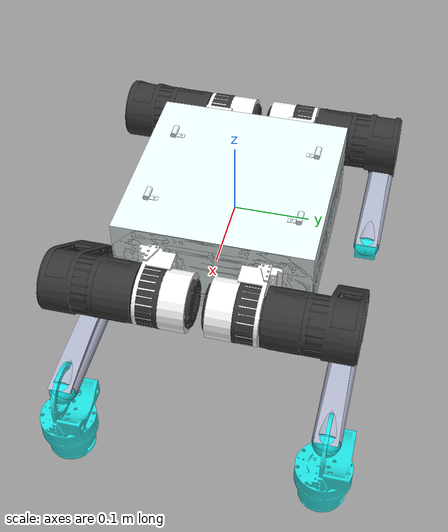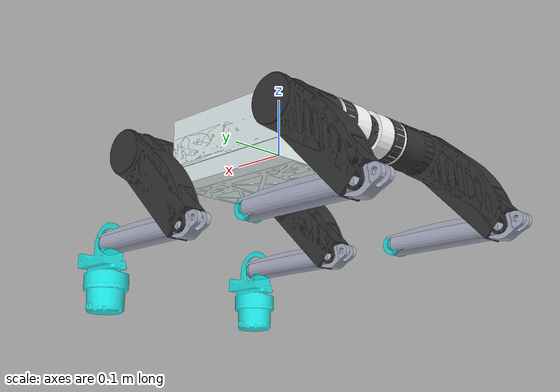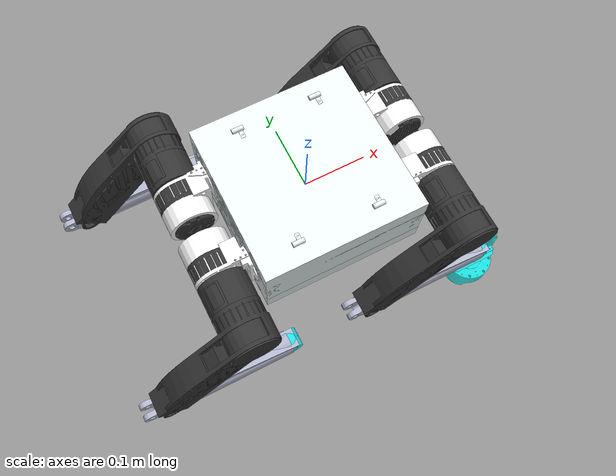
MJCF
<mujoco model="robot">
  <compiler angle="radian" meshdir="../meshes/"/>
  <asset>
    <mesh name="base_link" file="base_link.STL"/>
    <mesh name="leg1_link1" file="leg1_link1.STL"/>
    <mesh name="leg1_link2" file="leg1_link2.STL"/>
    <mesh name="leg1_link3" file="leg1_link3.STL"/>
    <mesh name="leg1_link4" file="leg1_link4.STL"/>
    <mesh name="leg2_link1" file="leg2_link1.STL"/>
    <mesh name="leg2_link2" file="leg2_link2.STL"/>
    <mesh name="leg2_link3" file="leg2_link3.STL"/>
    <mesh name="leg2_link4" file="leg2_link4.STL"/>
    <mesh name="leg3_link1" file="leg3_link1.STL"/>
    <mesh name="leg3_link2" file="leg3_link2.STL"/>
    <mesh name="leg3_link3" file="leg3_link3.STL"/>
    <mesh name="leg3_link4" file="leg3_link4.STL"/>
    <mesh name="leg4_link1" file="leg4_link1.STL"/>
    <mesh name="leg4_link2" file="leg4_link2.STL"/>
    <mesh name="leg4_link3" file="leg4_link3.STL"/>
    <mesh name="leg4_link4" file="leg4_link4.STL"/>
  </asset>
  <worldbody>
    <geom type="mesh" contype="0" conaffinity="0" group="1" density="0" rgba="0.9 0.95 0.95 1" mesh="base_link"/>
    <geom size="0.128 0.128 0.059" type="box" rgba="0.9 0.95 0.95 1"/>
    <geom size="0.0075 0.0075 0.002" type="box" contype="0" conaffinity="0" group="1" density="0"/>
    <body name="leg1_link1" pos="0.177 -0.0755 0">
      <inertial pos="-0.00461 0.02471 0.00019" quat="0.28679 0.646337 -0.28679 0.646337" mass="0.68678" diaginertia="0.00057 0.000555249 0.000454751"/>
      <joint name="leg1_joint1" pos="0 0 0" axis="1 0 0" range="-3.14 3.14" damping="0.01" frictionloss="0.2"/>
      <geom type="mesh" contype="0" conaffinity="0" group="1" density="0" rgba="1 1 1 1" mesh="leg1_link1"/>
      <geom size="0.038 0.03" pos="0 0.033 0" quat="0.707388 0.706825 0 0" type="cylinder" rgba="1 1 1 1"/>
      <body name="leg1_link2" pos="0 -0.0993 0" quat="0.923956 0 0.382499 0">
        <inertial pos="-0.00238 0.02441 -0.04244" quat="0.981879 0.109326 -0.0415327 0.149121" mass="1.22859" diaginertia="0.00760341 0.00707203 0.00135456"/>
        <joint name="leg1_joint2" pos="0 0 0" axis="0 1 0" range="-3.14 3.14" damping="0.01" frictionloss="0.2"/>
        <geom type="mesh" contype="0" conaffinity="0" group="1" density="0" rgba="0.2 0.2 0.2 1" mesh="leg1_link2"/>
        <geom size="0.038 0.0585" pos="0 0.036 0" quat="0.707388 0.706825 0 0" type="cylinder" rgba="0.2 0.2 0.2 1"/>
        <geom size="0.0825 0.02 0.03" pos="0 0 -0.125" quat="0.707388 0 0.706825 0" type="box" rgba="0.2 0.2 0.2 1"/>
        <body name="leg1_link3" pos="0 0 -0.21" quat="0.383235 0 -0.923651 0">
          <inertial pos="0.00353064 0 -0.103181" quat="0.999797 0 0.0201409 0" mass="0.21703" diaginertia="0.0011769 0.00117616 3.92612e-05"/>
          <joint name="leg1_joint3" pos="0 0 0" axis="0 1 0" range="-3.14 3.14" damping="0.01" frictionloss="0.2"/>
          <geom type="mesh" contype="0" conaffinity="0" group="1" density="0" rgba="0.671705 0.692426 0.77427 1" mesh="leg1_link3"/>
          <geom size="0.019 0.105" pos="0 0 -0.105" type="cylinder" rgba="0.671705 0.692426 0.77427 1"/>
          <geom pos="0 0 -0.21" type="mesh" contype="0" conaffinity="0" group="1" density="0" rgba="0 1 1 0.75" mesh="leg1_link4"/>
          <geom size="0.018" pos="0 0 -0.21" rgba="0 1 1 0.75"/>
        </body>
      </body>
    </body>
    <body name="leg2_link1" pos="0.177 0.0755 0">
      <inertial pos="-0.00461 -0.02471 0.00019" quat="0.646337 0.28679 -0.646337 0.28679" mass="0.68678" diaginertia="0.00057 0.000555249 0.000454751"/>
      <joint name="leg2_joint1" pos="0 0 0" axis="1 0 0" range="-3.14 3.14" damping="0.01" frictionloss="0.2"/>
      <geom type="mesh" contype="0" conaffinity="0" group="1" density="0" rgba="1 1 1 1" mesh="leg2_link1"/>
      <geom size="0.038 0.03" pos="0 -0.033 0" quat="0.707388 0.706825 0 0" type="cylinder" rgba="1 1 1 1"/>
      <body name="leg2_link2" pos="0 0.0993 0" quat="0.923956 0 0.382499 0">
        <inertial pos="-0.00238 -0.02441 -0.04244" quat="0.981879 -0.109326 -0.0415327 -0.149121" mass="1.22859" diaginertia="0.00760341 0.00707203 0.00135456"/>
        <joint name="leg2_joint2" pos="0 0 0" axis="0 1 0" range="-3.14 3.14" damping="0.01" frictionloss="0.2"/>
        <geom type="mesh" contype="0" conaffinity="0" group="1" density="0" rgba="0.2 0.2 0.2 1" mesh="leg2_link2"/>
        <geom size="0.038 0.0585" pos="0 -0.036 0" quat="0.707388 0.706825 0 0" type="cylinder" rgba="0.2 0.2 0.2 1"/>
        <geom size="0.0825 0.02 0.03" pos="0 0 -0.125" quat="0.707388 0 0.706825 0" type="box" rgba="0.2 0.2 0.2 1"/>
        <body name="leg2_link3" pos="0 0 -0.21" quat="0.383235 0 -0.923651 0">
          <inertial pos="0.00353064 0 -0.103181" quat="0.999797 0 0.0201409 0" mass="0.21703" diaginertia="0.0011769 0.00117616 3.92612e-05"/>
          <joint name="leg2_joint3" pos="0 0 0" axis="0 1 0" range="-3.14 3.14" damping="0.01" frictionloss="0.2"/>
          <geom type="mesh" contype="0" conaffinity="0" group="1" density="0" rgba="0.671705 0.692426 0.77427 1" mesh="leg2_link3"/>
          <geom size="0.019 0.105" pos="0 0 -0.105" type="cylinder" rgba="0.671705 0.692426 0.77427 1"/>
          <geom pos="0 0 -0.21" type="mesh" contype="0" conaffinity="0" group="1" density="0" rgba="0 1 1 0.75" mesh="leg2_link4"/>
          <geom size="0.018" pos="0 0 -0.21" rgba="0 1 1 0.75"/>
        </body>
      </body>
    </body>
    <body name="leg3_link1" pos="-0.177 -0.0755 0">
      <inertial pos="0.00461 0.02471 0.00019" quat="0.646337 0.28679 -0.646337 0.28679" mass="0.68678" diaginertia="0.00057 0.000555249 0.000454751"/>
      <joint name="leg3_joint1" pos="0 0 0" axis="1 0 0" range="-3.14 3.14" damping="0.01" frictionloss="0.2"/>
      <geom type="mesh" contype="0" conaffinity="0" group="1" density="0" rgba="1 1 1 1" mesh="leg3_link1"/>
      <geom size="0.038 0.03" pos="0 0.033 0" quat="0.707388 0.706825 0 0" type="cylinder" rgba="1 1 1 1"/>
      <body name="leg3_link2" pos="0 -0.0993 0" quat="0.923956 0 0.382499 0">
        <inertial pos="0.00238 0.02441 -0.04244" quat="0.981879 0.109326 0.0415327 -0.149121" mass="1.22859" diaginertia="0.00760341 0.00707203 0.00135456"/>
        <joint name="leg3_joint2" pos="0 0 0" axis="0 1 0" range="-3.14 3.14" damping="0.01" frictionloss="0.2"/>
        <geom type="mesh" contype="0" conaffinity="0" group="1" density="0" rgba="0.2 0.2 0.2 1" mesh="leg3_link2"/>
        <geom size="0.038 0.0585" pos="0 0.036 0" quat="0.707388 0.706825 0 0" type="cylinder" rgba="0.2 0.2 0.2 1"/>
        <geom size="0.0825 0.02 0.03" pos="0 0 -0.125" quat="0.707388 0 0.706825 0" type="box" rgba="0.2 0.2 0.2 1"/>
        <body name="leg3_link3" pos="0 0 -0.21" quat="0.383235 0 -0.923651 0">
          <inertial pos="-0.00353064 0 -0.103181" quat="0.999797 0 -0.0201409 0" mass="0.21703" diaginertia="0.0011769 0.00117616 3.92612e-05"/>
          <joint name="leg3_joint3" pos="0 0 0" axis="0 1 0" range="-3.14 3.14" damping="0.01" frictionloss="0.2"/>
          <geom type="mesh" contype="0" conaffinity="0" group="1" density="0" rgba="0.671705 0.692426 0.77427 1" mesh="leg3_link3"/>
          <geom size="0.019 0.105" pos="0 0 -0.105" type="cylinder" rgba="0.671705 0.692426 0.77427 1"/>
          <geom pos="0 0 -0.21" type="mesh" contype="0" conaffinity="0" group="1" density="0" rgba="0 1 1 0.75" mesh="leg3_link4"/>
          <geom size="0.018" pos="0 0 -0.21" rgba="0 1 1 0.75"/>
        </body>
      </body>
    </body>
    <body name="leg4_link1" pos="-0.177 0.0755 0">
      <inertial pos="0.00461 -0.02471 0.00019" quat="0.28679 0.646337 -0.28679 0.646337" mass="0.68678" diaginertia="0.00057 0.000555249 0.000454751"/>
      <joint name="leg4_joint1" pos="0 0 0" axis="1 0 0" range="-3.14 3.14" damping="0.01" frictionloss="0.2"/>
      <geom type="mesh" contype="0" conaffinity="0" group="1" density="0" rgba="1 1 1 1" mesh="leg4_link1"/>
      <geom size="0.038 0.03" pos="0 -0.033 0" quat="0.707388 0.706825 0 0" type="cylinder" rgba="1 1 1 1"/>
      <body name="leg4_link2" pos="0 0.0993 0" quat="0.923956 0 0.382499 0">
        <inertial pos="0.00238 -0.02441 -0.04244" quat="0.981879 -0.109326 0.0415327 0.149121" mass="1.22859" diaginertia="0.00760341 0.00707203 0.00135456"/>
        <joint name="leg4_joint2" pos="0 0 0" axis="0 1 0" range="-3.14 3.14" damping="0.01" frictionloss="0.2"/>
        <geom type="mesh" contype="0" conaffinity="0" group="1" density="0" rgba="0.2 0.2 0.2 1" mesh="leg4_link2"/>
        <geom size="0.038 0.0585" pos="0 -0.036 0" quat="0.707388 0.706825 0 0" type="cylinder" rgba="0.2 0.2 0.2 1"/>
        <geom size="0.0825 0.02 0.03" pos="0 0 -0.125" quat="0.707388 0 0.706825 0" type="box" rgba="0.2 0.2 0.2 1"/>
        <body name="leg4_link3" pos="0 0 -0.21" quat="0.383235 0 -0.923651 0">
          <inertial pos="-0.00353064 0 -0.103181" quat="0.999797 0 -0.0201409 0" mass="0.21703" diaginertia="0.0011769 0.00117616 3.92612e-05"/>
          <joint name="leg4_joint3" pos="0 0 0" axis="0 1 0" range="-3.14 3.14" damping="0.01" frictionloss="0.2"/>
          <geom type="mesh" contype="0" conaffinity="0" group="1" density="0" rgba="0.671705 0.692426 0.77427 1" mesh="leg4_link3"/>
          <geom size="0.019 0.105" pos="0 0 -0.105" type="cylinder" rgba="0.671705 0.692426 0.77427 1"/>
          <geom pos="0 0 -0.21" type="mesh" contype="0" conaffinity="0" group="1" density="0" rgba="0 1 1 0.75" mesh="leg4_link4"/>
          <geom size="0.018" pos="0 0 -0.21" rgba="0 1 1 0.75"/>
        </body>
      </body>
    </body>
  </worldbody>
</mujoco>
